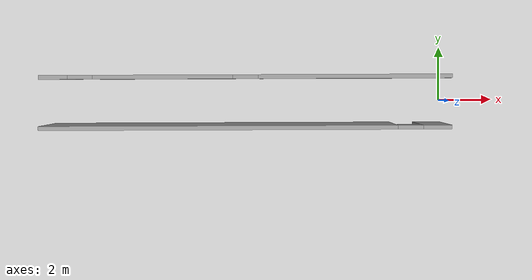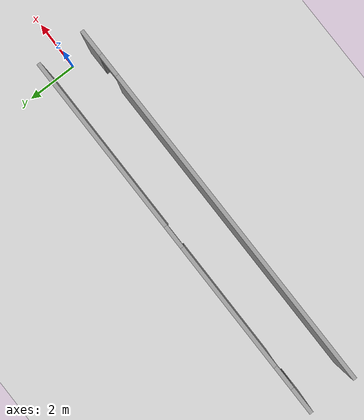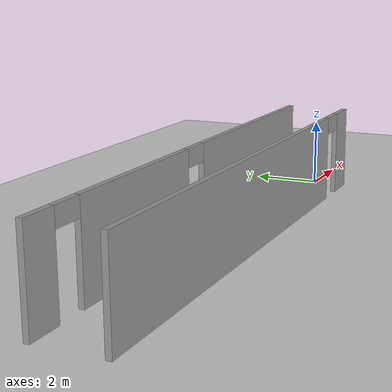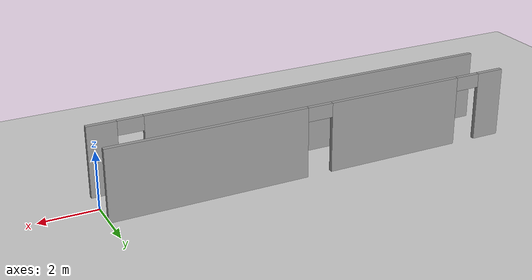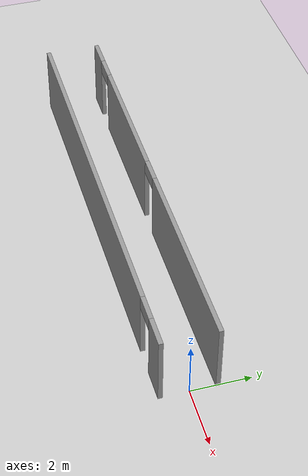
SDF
<sdf version="1.6">
 <world name="default">
  <light name="sun" type="directional">
   <pose>0 0 10 0 -0 0</pose>
   <diffuse>0.8 0.8 0.8 1</diffuse>
   <specular>0.2 0.2 0.2 1</specular>
   <attenuation>
    <range>1000</range>
    <constant>0.9</constant>
    <linear>0.01</linear>
    <quadratic>0.001</quadratic>
   </attenuation>
   <direction>-0.5 0.1 -0.9</direction>
  </light>
  <model name="ground_plane">
   <static>1</static>
   <link name="link">
    <collision name="collision">
     <geometry><plane><normal>0 0 1</normal><size>100 100</size></plane></geometry>
     <surface>
      <contact><collide_bitmask>65535</collide_bitmask></contact>
      <friction><ode><mu>100</mu><mu2>50</mu2></ode></friction>
     </surface>
    </collision>
    <visual name="visual">
     <cast_shadows>0</cast_shadows>
     <geometry><plane><normal>0 0 1</normal><size>100 100</size></plane></geometry>
     <material>
      <script><uri>file://media/materials/scripts/gazebo.material</uri><name>Gazebo/Grey</name></script>
     </material>
    </visual>
   </link>
  </model>
  <gravity>0 0 -9.8</gravity>
  <magnetic_field>6e-06 2.3e-05 -4.2e-05</magnetic_field>
  <atmosphere type="adiabatic"/>
  <physics name="default_physics" default="0" type="ode">
   <max_step_size>0.001</max_step_size>
   <real_time_factor>1</real_time_factor>
   <real_time_update_rate>1000</real_time_update_rate>
  </physics>
  <scene><ambient>0.4 0.4 0.4 1</ambient><background>0.7 0.7 0.7 1</background><shadows>1</shadows></scene>
  <spherical_coordinates>
   <surface_model>EARTH_WGS84</surface_model>
   <latitude_deg>0</latitude_deg>
   <longitude_deg>0</longitude_deg>
   <elevation>0</elevation>
   <heading_deg>0</heading_deg>
  </spherical_coordinates>
  <model name="korytarz_nie_symetryczny">
   <pose>-7.36045 -0.002926 0 0 -0 0</pose>
   <link name="Wall_0">
    <pose>0.010764 0.912274 0 0 -0 0</pose>
    <visual name="Wall_0_Visual_0">
     <pose>-6.86325 0 1.25 0 -0 0</pose>
     <geometry><box><size>1.02351 0.15 2.5</size></box></geometry>
     <material>
      <script><uri>file://media/materials/scripts/gazebo.material</uri><name>Gazebo/Grey</name></script>
      <ambient>1 1 1 1</ambient>
     </material>
     <meta><layer>0</layer></meta>
    </visual>
    <collision name="Wall_0_Collision_0">
     <geometry><box><size>1.02351 0.15 2.5</size></box></geometry>
     <pose>-6.86325 0 1.25 0 -0 0</pose>
    </collision>
    <visual name="Wall_0_Visual_1">
     <pose>-2.95184 0 1.25 0 -0 0</pose>
     <geometry><box><size>4.9993 0.15 2.5</size></box></geometry>
     <material>
      <script><uri>file://media/materials/scripts/gazebo.material</uri><name>Gazebo/Grey</name></script>
      <ambient>1 1 1 1</ambient>
     </material>
     <meta><layer>0</layer></meta>
    </visual>
    <collision name="Wall_0_Collision_1">
     <geometry><box><size>4.9993 0.15 2.5</size></box></geometry>
     <pose>-2.95184 0 1.25 0 -0 0</pose>
    </collision>
    <visual name="Wall_0_Visual_2">
     <pose>3.9114 0 1.25 0 -0 0</pose>
     <geometry><box><size>6.92719 0.15 2.5</size></box></geometry>
     <material>
      <script><uri>file://media/materials/scripts/gazebo.material</uri><name>Gazebo/Grey</name></script>
      <ambient>1 1 1 1</ambient>
     </material>
     <meta><layer>0</layer></meta>
    </visual>
    <collision name="Wall_0_Collision_2">
     <geometry><box><size>6.92719 0.15 2.5</size></box></geometry>
     <pose>3.9114 0 1.25 0 -0 0</pose>
    </collision>
    <visual name="Wall_0_Visual_3">
     <pose>-5.90149 0 2.25 0 -0 0</pose>
     <geometry><box><size>0.9 0.15 0.5</size></box></geometry>
     <material>
      <script><uri>file://media/materials/scripts/gazebo.material</uri><name>Gazebo/Grey</name></script>
      <ambient>1 1 1 1</ambient>
     </material>
     <meta><layer>0</layer></meta>
    </visual>
    <collision name="Wall_0_Collision_3">
     <geometry><box><size>0.9 0.15 0.5</size></box></geometry>
     <pose>-5.90149 0 2.25 0 -0 0</pose>
    </collision>
    <visual name="Wall_0_Visual_4">
     <pose>-0.002194 0 2.25 0 -0 0</pose>
     <geometry><box><size>0.9 0.15 0.5</size></box></geometry>
     <material>
      <script><uri>file://media/materials/scripts/gazebo.material</uri><name>Gazebo/Grey</name></script>
      <ambient>1 1 1 1</ambient>
     </material>
     <meta><layer>0</layer></meta>
    </visual>
    <collision name="Wall_0_Collision_4">
     <geometry><box><size>0.9 0.15 0.5</size></box></geometry>
     <pose>-0.002194 0 2.25 0 -0 0</pose>
    </collision>
   </link>
   <link name="Wall_2">
    <pose>-0.010764 -0.912274 0 0 -0 0</pose>
    <visual name="Wall_2_Visual_0">
     <pose>-0.961508 0 1.25 0 -0 0</pose>
     <geometry><box><size>12.827 0.15 2.5</size></box></geometry>
     <material>
      <script><uri>file://media/materials/scripts/gazebo.material</uri><name>Gazebo/Grey</name></script>
      <ambient>1 1 1 1</ambient>
     </material>
     <meta><layer>0</layer></meta>
    </visual>
    <collision name="Wall_2_Collision_0">
     <geometry><box><size>12.827 0.15 2.5</size></box></geometry>
     <pose>-0.961508 0 1.25 0 -0 0</pose>
    </collision>
    <visual name="Wall_2_Visual_1">
     <pose>6.86349 0 1.25 0 -0 0</pose>
     <geometry><box><size>1.02302 0.15 2.5</size></box></geometry>
     <material>
      <script><uri>file://media/materials/scripts/gazebo.material</uri><name>Gazebo/Grey</name></script>
      <ambient>1 1 1 1</ambient>
     </material>
     <meta><layer>0</layer></meta>
    </visual>
    <collision name="Wall_2_Collision_1">
     <geometry><box><size>1.02302 0.15 2.5</size></box></geometry>
     <pose>6.86349 0 1.25 0 -0 0</pose>
    </collision>
    <visual name="Wall_2_Visual_2">
     <pose>5.90198 0 2.25 0 -0 0</pose>
     <geometry><box><size>0.9 0.15 0.5</size></box></geometry>
     <material>
      <script><uri>file://media/materials/scripts/gazebo.material</uri><name>Gazebo/Grey</name></script>
      <ambient>1 1 1 1</ambient>
     </material>
     <meta><layer>0</layer></meta>
    </visual>
    <collision name="Wall_2_Collision_2">
     <geometry><box><size>0.9 0.15 0.5</size></box></geometry>
     <pose>5.90198 0 2.25 0 -0 0</pose>
    </collision>
   </link>
   <static>1</static>
  </model>
 </world>
</sdf>
